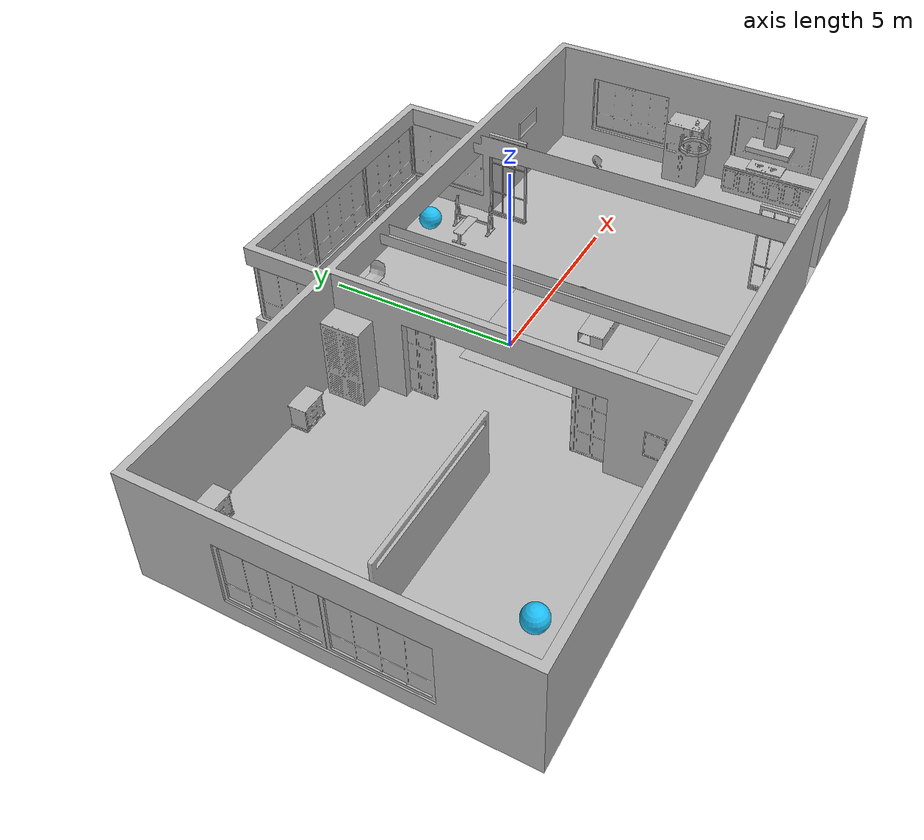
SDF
<sdf version="1.7">
 <world name="default">
  <gravity>0 0 -9.8</gravity>
  <magnetic_field>6e-06 2.3e-05 -4.2e-05</magnetic_field>
  <atmosphere type="adiabatic"/>
  <physics name="default_physics" default="0" type="ode">
   <max_step_size>0.001</max_step_size>
   <real_time_factor>1</real_time_factor>
   <real_time_update_rate>1000</real_time_update_rate>
  </physics>
  <scene>
   <ambient>0.4 0.4 0.4 1</ambient>
   <background>0.7 0.7 0.7 1</background>
   <shadows>0</shadows>
   <grid>0</grid>
   <origin_visual>0</origin_visual>
  </scene>
  <spherical_coordinates>
   <surface_model>EARTH_WGS84</surface_model>
   <latitude_deg>0</latitude_deg>
   <longitude_deg>0</longitude_deg>
   <elevation>0</elevation>
   <heading_deg>0</heading_deg>
  </spherical_coordinates>
  <model name="AirconditionerA_01_001">
   <static>1</static>
   <frame name="aws_robomaker_residential_AirconditionerA_01::__model__" attached_to="aws_robomaker_residential_AirconditionerA_01::link">
    <pose relative_to="__model__">0 0 0 0 -0 0</pose>
   </frame>
   <link name="aws_robomaker_residential_AirconditionerA_01::link">
    <inertial><mass>1</mass></inertial>
    <collision name="collision">
     <geometry>
      <mesh>
       <uri>model://aws_robomaker_residential_AirconditionerA_01/meshes/aws_AirconditionerA_01_collision.DAE</uri>
       <scale>1 1 1</scale>
      </mesh>
     </geometry>
    </collision>
    <visual name="visual">
     <geometry>
      <mesh>
       <uri>model://aws_robomaker_residential_AirconditionerA_01/meshes/aws_AirconditionerA_01_visual.DAE</uri>
      </mesh>
     </geometry>
     <meta><layer>1</layer></meta>
    </visual>
    <pose relative_to="aws_robomaker_residential_AirconditionerA_01::__model__">0 0 0 0 -0 0</pose>
   </link>
   <static>1</static>
   <pose>-9.19941 2.41123 2.08454 0 -0 0</pose>
  </model>
  <model name="AirconditionerB_01_001">
   <static>1</static>
   <frame name="aws_robomaker_residential_AirconditionerB_01::__model__" attached_to="aws_robomaker_residential_AirconditionerB_01::link">
    <pose relative_to="__model__">0 0 0 0 -0 0</pose>
   </frame>
   <link name="aws_robomaker_residential_AirconditionerB_01::link">
    <inertial><mass>1</mass></inertial>
    <collision name="collision">
     <geometry>
      <mesh>
       <uri>model://aws_robomaker_residential_AirconditionerB_01/meshes/aws_AirconditionerB_01_collision.DAE</uri>
       <scale>1 1 1</scale>
      </mesh>
     </geometry>
    </collision>
    <visual name="visual">
     <geometry>
      <mesh>
       <uri>model://aws_robomaker_residential_AirconditionerB_01/meshes/aws_AirconditionerB_01_visual.DAE</uri>
      </mesh>
     </geometry>
     <meta><layer>1</layer></meta>
    </visual>
    <pose relative_to="aws_robomaker_residential_AirconditionerB_01::__model__">0 0 0 0 -0 0</pose>
   </link>
   <pose>-2.00466 -5.22661 0.003485 0 -0 0</pose>
  </model>
  <model name="Ball_01_001">
   <static>1</static>
   <frame name="aws_robomaker_residential_Ball_01::__model__" attached_to="aws_robomaker_residential_Ball_01::link">
    <pose relative_to="__model__">0 0 0 0 -0 0</pose>
   </frame>
   <link name="aws_robomaker_residential_Ball_01::link">
    <inertial>
     <mass>0.12</mass>
     <inertia>
      <ixx>0.030752</ixx>
      <ixy>0</ixy>
      <ixz>0</ixz>
      <iyy>0.030752</iyy>
      <iyz>0</iyz>
      <izz>0.030752</izz>
     </inertia>
    </inertial>
    <collision name="collision">
     <geometry><sphere><radius>0.31</radius></sphere></geometry>
     <surface>
      <friction><ode><mu>0.85</mu><mu2>0.85</mu2></ode></friction>
      <contact><ode><kd>8500</kd><max_vel>5.1</max_vel></ode></contact>
     </surface>
    </collision>
    <visual name="visual">
     <geometry><sphere><radius>0.31</radius></sphere></geometry>
     <material><diffuse>0.12 0.76 0.97 1</diffuse><ambient>0.03 0.21 0.27 1</ambient></material>
     <meta><layer>1</layer></meta>
    </visual>
    <pose relative_to="aws_robomaker_residential_Ball_01::__model__">0 0 0 0 -0 0</pose>
   </link>
   <pose>3.2955 4.22567 0.318684 0 -0 0</pose>
  </model>
  <model name="Ball_01_003">
   <static>1</static>
   <frame name="aws_robomaker_residential_Ball_01::__model__" attached_to="aws_robomaker_residential_Ball_01::link">
    <pose relative_to="__model__">0 0 0 0 -0 0</pose>
   </frame>
   <link name="aws_robomaker_residential_Ball_01::link">
    <inertial>
     <mass>0.12</mass>
     <inertia>
      <ixx>0.030752</ixx>
      <ixy>0</ixy>
      <ixz>0</ixz>
      <iyy>0.030752</iyy>
      <iyz>0</iyz>
      <izz>0.030752</izz>
     </inertia>
    </inertial>
    <collision name="collision">
     <geometry><sphere><radius>0.31</radius></sphere></geometry>
     <surface>
      <friction><ode><mu>0.85</mu><mu2>0.85</mu2></ode></friction>
      <contact><ode><kd>8500</kd><max_vel>5.1</max_vel></ode></contact>
     </surface>
    </collision>
    <visual name="visual">
     <geometry><sphere><radius>0.31</radius></sphere></geometry>
     <material><diffuse>0.12 0.76 0.97 1</diffuse><ambient>0.03 0.21 0.27 1</ambient></material>
     <meta><layer>1</layer></meta>
    </visual>
    <pose relative_to="aws_robomaker_residential_Ball_01::__model__">0 0 0 0 -0 0</pose>
   </link>
   <pose>-6.9455 -4.22174 0.318684 0 -0 0</pose>
  </model>
  <model name="NightStand_01_001">
   <static>1</static>
   <frame name="aws_robomaker_residential_NightStand_01::__model__" attached_to="aws_robomaker_residential_NightStand_01::link">
    <pose relative_to="__model__">0 0 0 0 -0 0</pose>
   </frame>
   <link name="aws_robomaker_residential_NightStand_01::link">
    <inertial>
     <mass>13.6</mass>
     <inertia><ixx>0.6165</ixx><ixy>0</ixy><ixz>0</ixz><iyy>1.29664</iyy><iyz>0</iyz><izz>0.7706</izz></inertia>
    </inertial>
    <collision name="collision">
     <geometry>
      <mesh>
       <uri>model://aws_robomaker_residential_NightStand_01/meshes/aws_NightStand_01_collision.DAE</uri>
       <scale>1 1 1</scale>
      </mesh>
     </geometry>
    </collision>
    <visual name="visual">
     <geometry>
      <mesh><uri>model://aws_robomaker_residential_NightStand_01/meshes/aws_NightStand_01_visual.DAE</uri></mesh>
     </geometry>
     <meta><layer>1</layer></meta>
    </visual>
    <pose relative_to="aws_robomaker_residential_NightStand_01::__model__">0 0 0 0 -0 0</pose>
   </link>
   <static>1</static>
   <pose>-7.72551 2.86042 0.005258 -2e-06 0 0</pose>
  </model>
  <model name="NightStand_01_002">
   <static>1</static>
   <frame name="aws_robomaker_residential_NightStand_01::__model__" attached_to="aws_robomaker_residential_NightStand_01::link">
    <pose relative_to="__model__">0 0 0 0 -0 0</pose>
   </frame>
   <link name="aws_robomaker_residential_NightStand_01::link">
    <inertial>
     <mass>13.6</mass>
     <inertia><ixx>0.6165</ixx><ixy>0</ixy><ixz>0</ixz><iyy>1.29664</iyy><iyz>0</iyz><izz>0.7706</izz></inertia>
    </inertial>
    <collision name="collision">
     <geometry>
      <mesh>
       <uri>model://aws_robomaker_residential_NightStand_01/meshes/aws_NightStand_01_collision.DAE</uri>
       <scale>1 1 1</scale>
      </mesh>
     </geometry>
    </collision>
    <visual name="visual">
     <geometry>
      <mesh><uri>model://aws_robomaker_residential_NightStand_01/meshes/aws_NightStand_01_visual.DAE</uri></mesh>
     </geometry>
     <meta><layer>1</layer></meta>
    </visual>
    <pose relative_to="aws_robomaker_residential_NightStand_01::__model__">0 0 0 0 -0 0</pose>
   </link>
   <static>1</static>
   <pose>-4.40734 2.86042 0.005256 0 2e-06 0</pose>
  </model>
  <model name="Board_01_001">
   <static>1</static>
   <frame name="aws_robomaker_residential_Board_01::__model__" attached_to="aws_robomaker_residential_Board_01::link">
    <pose relative_to="__model__">0 0 0 0 -0 0</pose>
   </frame>
   <link name="aws_robomaker_residential_Board_01::link">
    <inertial><mass>1</mass></inertial>
    <collision name="collision">
     <geometry>
      <mesh>
       <uri>model://aws_robomaker_residential_Board_01/meshes/aws_Board_01_collision.DAE</uri>
       <scale>1 1 1</scale>
      </mesh>
     </geometry>
    </collision>
    <visual name="visual">
     <geometry>
      <mesh><uri>model://aws_robomaker_residential_Board_01/meshes/aws_Board_01_visual.DAE</uri></mesh>
     </geometry>
     <meta><layer>2</layer></meta>
    </visual>
    <pose relative_to="aws_robomaker_residential_Board_01::__model__">0 0 0 0 -0 0</pose>
   </link>
   <static>1</static>
   <pose>2.77907 -5.3927 1.53817 0 -0 0</pose>
  </model>
  <model name="ChairD_01_001">
   <static>1</static>
   <frame name="aws_robomaker_residential_ChairD_01::__model__" attached_to="aws_robomaker_residential_ChairD_01::link">
    <pose relative_to="__model__">0 0 0 0 -0 0</pose>
   </frame>
   <link name="aws_robomaker_residential_ChairD_01::link">
    <inertial>
     <mass>4.5</mass>
     <inertia><ixy>0</ixy><ixz>0</ixz><iyz>0</iyz><ixx>0.217</ixx><iyy>0.217</iyy><izz>0.067</izz></inertia>
    </inertial>
    <collision name="collision">
     <geometry>
      <mesh>
       <uri>model://aws_robomaker_residential_ChairD_01/meshes/aws_ChairD_01_collision.DAE</uri>
       <scale>1 1 1</scale>
      </mesh>
     </geometry>
    </collision>
    <visual name="visual">
     <geometry>
      <mesh><uri>model://aws_robomaker_residential_ChairD_01/meshes/aws_ChairD_01_visual.DAE</uri></mesh>
     </geometry>
     <meta><layer>1</layer></meta>
    </visual>
    <pose relative_to="aws_robomaker_residential_ChairD_01::__model__">0 0 0 0 -0 0</pose>
   </link>
   <pose>-1.38078 4.10446 0 0 -0 0</pose>
  </model>
  <model name="ChairD_01_002">
   <static>1</static>
   <frame name="aws_robomaker_residential_ChairD_01::__model__" attached_to="aws_robomaker_residential_ChairD_01::link">
    <pose relative_to="__model__">0 0 0 0 -0 0</pose>
   </frame>
   <link name="aws_robomaker_residential_ChairD_01::link">
    <inertial>
     <mass>4.5</mass>
     <inertia><ixy>0</ixy><ixz>0</ixz><iyz>0</iyz><ixx>0.217</ixx><iyy>0.217</iyy><izz>0.067</izz></inertia>
    </inertial>
    <collision name="collision">
     <geometry>
      <mesh>
       <uri>model://aws_robomaker_residential_ChairD_01/meshes/aws_ChairD_01_collision.DAE</uri>
       <scale>1 1 1</scale>
      </mesh>
     </geometry>
    </collision>
    <visual name="visual">
     <geometry>
      <mesh><uri>model://aws_robomaker_residential_ChairD_01/meshes/aws_ChairD_01_visual.DAE</uri></mesh>
     </geometry>
     <meta><layer>1</layer></meta>
    </visual>
    <pose relative_to="aws_robomaker_residential_ChairD_01::__model__">0 0 0 0 -0 0</pose>
   </link>
   <pose>0.325214 4.10446 0 0 0 -3.13874</pose>
  </model>
  <model name="ChairD_01_003">
   <static>1</static>
   <frame name="aws_robomaker_residential_ChairD_01::__model__" attached_to="aws_robomaker_residential_ChairD_01::link">
    <pose relative_to="__model__">0 0 0 0 -0 0</pose>
   </frame>
   <link name="aws_robomaker_residential_ChairD_01::link">
    <inertial>
     <mass>4.5</mass>
     <inertia><ixy>0</ixy><ixz>0</ixz><iyz>0</iyz><ixx>0.217</ixx><iyy>0.217</iyy><izz>0.067</izz></inertia>
    </inertial>
    <collision name="collision">
     <geometry>
      <mesh>
       <uri>model://aws_robomaker_residential_ChairD_01/meshes/aws_ChairD_01_collision.DAE</uri>
       <scale>1 1 1</scale>
      </mesh>
     </geometry>
    </collision>
    <visual name="visual">
     <geometry>
      <mesh><uri>model://aws_robomaker_residential_ChairD_01/meshes/aws_ChairD_01_visual.DAE</uri></mesh>
     </geometry>
     <meta><layer>1</layer></meta>
    </visual>
    <pose relative_to="aws_robomaker_residential_ChairD_01::__model__">0 0 0 0 -0 0</pose>
   </link>
   <pose>-8.27078 -4.50446 0 0 -0 0.869673</pose>
  </model>
  <model name="Chandelier_01_001">
   <static>1</static>
   <frame name="aws_robomaker_residential_Chandelier_01::__model__" attached_to="aws_robomaker_residential_Chandelier_01::link">
    <pose relative_to="__model__">0 0 0 0 -0 0</pose>
   </frame>
   <link name="aws_robomaker_residential_Chandelier_01::link">
    <inertial><mass>1</mass></inertial>
    <collision name="collision">
     <geometry>
      <mesh>
       <uri>model://aws_robomaker_residential_Chandelier_01/meshes/aws_Chandelier_01_collision.DAE</uri>
       <scale>1 1 1</scale>
      </mesh>
     </geometry>
    </collision>
    <visual name="visual">
     <geometry>
      <mesh><uri>model://aws_robomaker_residential_Chandelier_01/meshes/aws_Chandelier_01_visual.DAE</uri></mesh>
     </geometry>
     <meta><layer>2</layer></meta>
    </visual>
    <pose relative_to="aws_robomaker_residential_Chandelier_01::__model__">0 0 0 0 -0 0</pose>
   </link>
   <static>1</static>
   <pose>1.22106 4.15574 1.295 0 -0 0</pose>
  </model>
  <model name="Chandelier_01_003">
   <static>1</static>
   <frame name="aws_robomaker_residential_Chandelier_01::__model__" attached_to="aws_robomaker_residential_Chandelier_01::link">
    <pose relative_to="__model__">0 0 0 0 -0 0</pose>
   </frame>
   <link name="aws_robomaker_residential_Chandelier_01::link">
    <inertial><mass>1</mass></inertial>
    <collision name="collision">
     <geometry>
      <mesh>
       <uri>model://aws_robomaker_residential_Chandelier_01/meshes/aws_Chandelier_01_collision.DAE</uri>
       <scale>1 1 1</scale>
      </mesh>
     </geometry>
    </collision>
    <visual name="visual">
     <geometry>
      <mesh><uri>model://aws_robomaker_residential_Chandelier_01/meshes/aws_Chandelier_01_visual.DAE</uri></mesh>
     </geometry>
     <meta><layer>2</layer></meta>
    </visual>
    <pose relative_to="aws_robomaker_residential_Chandelier_01::__model__">0 0 0 0 -0 0</pose>
   </link>
   <static>1</static>
   <pose>7.82406 -1.59 1.751 0 -0 0</pose>
  </model>
  <model name="Carpet_01_001">
   <static>1</static>
   <frame name="aws_robomaker_residential_Carpet_01::__model__" attached_to="aws_robomaker_residential_Carpet_01::link">
    <pose relative_to="__model__">0 0 0 0 -0 0</pose>
   </frame>
   <link name="aws_robomaker_residential_Carpet_01::link">
    <inertial><mass>8.1</mass></inertial>
    <collision name="collision">
     <geometry>
      <mesh>
       <uri>model://aws_robomaker_residential_Carpet_01/meshes/aws_Carpet_01_collision.DAE</uri>
       <scale>1 1 0.95</scale>
      </mesh>
     </geometry>
     <surface><friction><ode><mu>100</mu><mu2>50</mu2></ode></friction></surface>
     <pose>0 0 -0.01 0 -0 0</pose>
    </collision>
    <visual name="visual">
     <geometry>
      <mesh><uri>model://aws_robomaker_residential_Carpet_01/meshes/aws_Carpet_01_visual.DAE</uri></mesh>
     </geometry>
     <meta><layer>1</layer></meta>
    </visual>
    <pose relative_to="aws_robomaker_residential_Carpet_01::__model__">0 0 0 0 -0 0</pose>
   </link>
   <static>1</static>
   <pose>0.78505 -1.10665 0.001106 0 -0 0</pose>
  </model>
  <model name="SecurityCamera_01_001">
   <static>1</static>
   <frame name="aws_robomaker_residential_SecurityCamera_01::__model__" attached_to="aws_robomaker_residential_SecurityCamera_01::link">
    <pose relative_to="__model__">0 0 0 0 -0 0</pose>
   </frame>
   <link name="aws_robomaker_residential_SecurityCamera_01::link">
    <inertial>
     <mass>1</mass>
     <inertia>
      <ixx>18.2222</ixx>
      <ixy>0</ixy>
      <ixz>0</ixz>
      <iyy>18.2222</iyy>
      <iyz>0</iyz>
      <izz>0.0018767</izz>
     </inertia>
    </inertial>
    <collision name="collision">
     <geometry>
      <mesh>
       <uri>model://aws_robomaker_residential_SecurityCamera_01/meshes/aws_SecurityCamera_01_collision.DAE</uri>
       <scale>1 1 1</scale>
      </mesh>
     </geometry>
    </collision>
    <visual name="visual">
     <geometry>
      <mesh>
       <uri>model://aws_robomaker_residential_SecurityCamera_01/meshes/aws_SecurityCamera_01_visual.DAE</uri>
      </mesh>
     </geometry>
     <meta><layer>2</layer></meta>
    </visual>
    <pose relative_to="aws_robomaker_residential_SecurityCamera_01::__model__">0 0 0 0 -0 0</pose>
   </link>
   <pose>0.842134 -4.99629 0.495067 0 0 -2.84104</pose>
  </model>
  <model name="CoffeeTable_01_001">
   <static>1</static>
   <frame name="aws_robomaker_residential_CoffeeTable_01::__model__" attached_to="aws_robomaker_residential_CoffeeTable_01::link">
    <pose relative_to="__model__">0 0 0 0 -0 0</pose>
   </frame>
   <link name="aws_robomaker_residential_CoffeeTable_01::link">
    <inertial>
     <mass>21.7</mass>
     <inertia><ixx>0.81375</ixx><ixy>0</ixy><ixz>0</ixz><iyy>2.76675</iyy><iyz>0</iyz><izz>3.254</izz></inertia>
    </inertial>
    <collision name="collision">
     <geometry>
      <mesh>
       <uri>model://aws_robomaker_residential_CoffeeTable_01/meshes/aws_CoffeeTable_01_collision.DAE</uri>
       <scale>1 1 1</scale>
      </mesh>
     </geometry>
     <surface><contact><ode><max_vel>0.01</max_vel></ode></contact></surface>
    </collision>
    <visual name="visual">
     <geometry>
      <mesh><uri>model://aws_robomaker_residential_CoffeeTable_01/meshes/aws_CoffeeTable_01_visual.DAE</uri></mesh>
     </geometry>
     <meta><layer>1</layer></meta>
    </visual>
    <pose relative_to="aws_robomaker_residential_CoffeeTable_01::__model__">0 0 0 0 -0 0</pose>
   </link>
   <static>1</static>
   <pose>1.5123 -1.73344 0.041983 0 -0 0.01</pose>
  </model>
  <model name="CookingBench_01_001">
   <frame name="aws_robomaker_residential_CookingBench_01::__model__" attached_to="aws_robomaker_residential_CookingBench_01::link">
    <pose relative_to="__model__">0 0 0 0 -0 0</pose>
   </frame>
   <link name="aws_robomaker_residential_CookingBench_01::link">
    <inertial><mass>1</mass></inertial>
    <collision name="collision">
     <geometry>
      <mesh>
       <uri>model://aws_robomaker_residential_CookingBench_01/meshes/aws_CookingBench_01_collision.DAE</uri>
       <scale>1 1 1</scale>
      </mesh>
     </geometry>
    </collision>
    <visual name="visual">
     <geometry>
      <mesh>
       <uri>model://aws_robomaker_residential_CookingBench_01/meshes/aws_CookingBench_01_visual.DAE</uri>
      </mesh>
     </geometry>
     <meta><layer>1</layer></meta>
    </visual>
    <pose relative_to="aws_robomaker_residential_CookingBench_01::__model__">0 0 0 0 -0 0</pose>
   </link>
   <pose>9.03838 -3.35114 0.90361 0 -0 3.13713</pose>
   <static>1</static>
  </model>
  <model name="FitnessEquipment_01_001">
   <static>1</static>
   <frame name="aws_robomaker_residential_FitnessEquipment_01::__model__" attached_to="aws_robomaker_residential_FitnessEquipment_01::link">
    <pose relative_to="__model__">0 0 0 0 -0 0</pose>
   </frame>
   <link name="aws_robomaker_residential_FitnessEquipment_01::link">
    <inertial><mass>80</mass></inertial>
    <collision name="collision">
     <geometry>
      <mesh>
       <uri>model://aws_robomaker_residential_FitnessEquipment_01/meshes/aws_FitnessEquipment_01_collision.DAE</uri>
       <scale>1 1 1</scale>
      </mesh>
     </geometry>
    </collision>
    <visual name="visual">
     <geometry>
      <mesh>
       <uri>model://aws_robomaker_residential_FitnessEquipment_01/meshes/aws_FitnessEquipment_01_visual.DAE</uri>
      </mesh>
     </geometry>
     <meta><layer>1</layer></meta>
    </visual>
    <pose relative_to="aws_robomaker_residential_FitnessEquipment_01::__model__">0 0 0 0 -0 0</pose>
   </link>
   <static>1</static>
   <pose>3.48472 3.1691 0.003168 0 -0 0</pose>
  </model>
  <model name="FoldingDoor_01_001">
   <static>1</static>
   <frame name="aws_robomaker_residential_FoldingDoor_01::__model__" attached_to="aws_robomaker_residential_FoldingDoor_01::link">
    <pose relative_to="__model__">0 0 0 0 -0 0</pose>
   </frame>
   <link name="aws_robomaker_residential_FoldingDoor_01::link">
    <inertial><mass>1</mass></inertial>
    <collision name="collision">
     <geometry>
      <mesh>
       <uri>model://aws_robomaker_residential_FoldingDoor_01/meshes/aws_FoldingDoor_01_collision.DAE</uri>
       <scale>1 1 1</scale>
      </mesh>
     </geometry>
    </collision>
    <visual name="visual">
     <geometry>
      <mesh><uri>model://aws_robomaker_residential_FoldingDoor_01/meshes/aws_FoldingDoor_01_visual.DAE</uri></mesh>
     </geometry>
     <meta><layer>2</layer></meta>
    </visual>
    <pose relative_to="aws_robomaker_residential_FoldingDoor_01::__model__">0 0 0 0 -0 0</pose>
   </link>
   <static>1</static>
   <pose>-2.4611 1.84422 0.041881 0 -0 0</pose>
  </model>
  <model name="FoldingDoor_01_002">
   <static>1</static>
   <frame name="aws_robomaker_residential_FoldingDoor_01::__model__" attached_to="aws_robomaker_residential_FoldingDoor_01::link">
    <pose relative_to="__model__">0 0 0 0 -0 0</pose>
   </frame>
   <link name="aws_robomaker_residential_FoldingDoor_01::link">
    <inertial><mass>1</mass></inertial>
    <collision name="collision">
     <geometry>
      <mesh>
       <uri>model://aws_robomaker_residential_FoldingDoor_01/meshes/aws_FoldingDoor_01_collision.DAE</uri>
       <scale>1 1 1</scale>
      </mesh>
     </geometry>
    </collision>
    <visual name="visual">
     <geometry>
      <mesh><uri>model://aws_robomaker_residential_FoldingDoor_01/meshes/aws_FoldingDoor_01_visual.DAE</uri></mesh>
     </geometry>
     <meta><layer>2</layer></meta>
    </visual>
    <pose relative_to="aws_robomaker_residential_FoldingDoor_01::__model__">0 0 0 0 -0 0</pose>
   </link>
   <static>1</static>
   <pose>-2.4611 -4.05332 0.041881 0 -0 0</pose>
  </model>
  <model name="HouseWallB_01_001">
   <static>1</static>
   <frame name="aws_robomaker_residential_HouseWallB_01::__model__" attached_to="aws_robomaker_residential_HouseWallB_01::link">
    <pose relative_to="__model__">0 0 0 0 -0 0</pose>
   </frame>
   <link name="aws_robomaker_residential_HouseWallB_01::link">
    <inertial><mass>1</mass></inertial>
    <collision name="collision">
     <geometry>
      <mesh>
       <uri>model://aws_robomaker_residential_HouseWallB_01/meshes/aws_HouseWallB_01_collision.DAE</uri>
       <scale>1 1 1</scale>
      </mesh>
     </geometry>
    </collision>
    <visual name="visual">
     <geometry>
      <mesh><uri>model://aws_robomaker_residential_HouseWallB_01/meshes/aws_HouseWallB_01_visual.DAE</uri></mesh>
     </geometry>
     <meta><layer>2</layer></meta>
    </visual>
    <pose relative_to="aws_robomaker_residential_HouseWallB_01::__model__">0 0 0 0 -0 0</pose>
   </link>
   <static>1</static>
  </model>
  <model name="FloorB_01_001">
   <static>1</static>
   <frame name="aws_robomaker_residential_FloorB_01::__model__" attached_to="aws_robomaker_residential_FloorB_01::link">
    <pose relative_to="__model__">0 0 0 0 -0 0</pose>
   </frame>
   <link name="aws_robomaker_residential_FloorB_01::link">
    <inertial><mass>100</mass></inertial>
    <collision name="collision">
     <geometry>
      <mesh>
       <uri>model://aws_robomaker_residential_FloorB_01/meshes/aws_FloorB_01_collision.DAE</uri>
       <scale>1 1 0.9</scale>
      </mesh>
     </geometry>
     <surface><friction><ode><mu>100</mu><mu2>50</mu2></ode></friction></surface>
    </collision>
    <visual name="visual">
     <geometry>
      <mesh><uri>model://aws_robomaker_residential_FloorB_01/meshes/aws_FloorB_01_visual.DAE</uri></mesh>
     </geometry>
     <meta><layer>1</layer></meta>
    </visual>
    <pose relative_to="aws_robomaker_residential_FloorB_01::__model__">0 0 0 0 -0 0</pose>
   </link>
   <static>1</static>
  </model>
  <model name="FoldingDoor_02_001">
   <static>1</static>
   <frame name="aws_robomaker_residential_FoldingDoor_02::__model__" attached_to="aws_robomaker_residential_FoldingDoor_02::link">
    <pose relative_to="__model__">0 0 0 0 -0 0</pose>
   </frame>
   <link name="aws_robomaker_residential_FoldingDoor_02::link">
    <inertial><mass>1</mass></inertial>
    <collision name="collision">
     <geometry>
      <mesh>
       <uri>model://aws_robomaker_residential_FoldingDoor_02/meshes/aws_FoldingDoor_02_collision.DAE</uri>
       <scale>1 1 1</scale>
      </mesh>
     </geometry>
    </collision>
    <visual name="visual">
     <geometry>
      <mesh><uri>model://aws_robomaker_residential_FoldingDoor_02/meshes/aws_FoldingDoor_02_visual.DAE</uri></mesh>
     </geometry>
     <meta><layer>2</layer></meta>
    </visual>
    <pose relative_to="aws_robomaker_residential_FoldingDoor_02::__model__">0 0 0 0 -0 0</pose>
   </link>
   <static>1</static>
   <pose>4.67423 2.46451 0 0 -0 3.14159</pose>
  </model>
  <model name="FoldingDoor_02_002">
   <static>1</static>
   <frame name="aws_robomaker_residential_FoldingDoor_02::__model__" attached_to="aws_robomaker_residential_FoldingDoor_02::link">
    <pose relative_to="__model__">0 0 0 0 -0 0</pose>
   </frame>
   <link name="aws_robomaker_residential_FoldingDoor_02::link">
    <inertial><mass>1</mass></inertial>
    <collision name="collision">
     <geometry>
      <mesh>
       <uri>model://aws_robomaker_residential_FoldingDoor_02/meshes/aws_FoldingDoor_02_collision.DAE</uri>
       <scale>1 1 1</scale>
      </mesh>
     </geometry>
    </collision>
    <visual name="visual">
     <geometry>
      <mesh><uri>model://aws_robomaker_residential_FoldingDoor_02/meshes/aws_FoldingDoor_02_visual.DAE</uri></mesh>
     </geometry>
     <meta><layer>2</layer></meta>
    </visual>
    <pose relative_to="aws_robomaker_residential_FoldingDoor_02::__model__">0 0 0 0 -0 0</pose>
   </link>
   <static>1</static>
   <pose>4.8912 -4.84968 0 0 -0 0</pose>
  </model>
  <model name="KitchenCabinet_01_001">
   <static>1</static>
   <frame name="aws_robomaker_residential_KitchenCabinet_01::__model__" attached_to="aws_robomaker_residential_KitchenCabinet_01::link">
    <pose relative_to="__model__">0 0 0 0 -0 0</pose>
   </frame>
   <link name="aws_robomaker_residential_KitchenCabinet_01::link">
    <inertial><mass>1</mass></inertial>
    <collision name="collision">
     <geometry>
      <mesh>
       <uri>model://aws_robomaker_residential_KitchenCabinet_01/meshes/aws_KitchenCabinet_01_collision.DAE</uri>
       <scale>1 1 1</scale>
      </mesh>
     </geometry>
    </collision>
    <visual name="visual">
     <geometry>
      <mesh>
       <uri>model://aws_robomaker_residential_KitchenCabinet_01/meshes/aws_KitchenCabinet_01_visual.DAE</uri>
      </mesh>
     </geometry>
     <meta><layer>1</layer></meta>
    </visual>
    <pose relative_to="aws_robomaker_residential_KitchenCabinet_01::__model__">0 0 0 0 -0 0</pose>
   </link>
   <static>1</static>
   <pose>8.00201 -3.83651 0.012068 0 0 -3.14</pose>
  </model>
  <model name="LightC_01_001">
   <static>1</static>
   <frame name="aws_robomaker_residential_LightC_01::__model__" attached_to="aws_robomaker_residential_LightC_01::link">
    <pose relative_to="__model__">0 0 0 0 -0 0</pose>
   </frame>
   <link name="aws_robomaker_residential_LightC_01::link">
    <inertial><mass>1</mass></inertial>
    <collision name="collision">
     <geometry>
      <mesh>
       <uri>model://aws_robomaker_residential_LightC_01/meshes/aws_LightC_01_collision.DAE</uri>
       <scale>1 1 1</scale>
      </mesh>
     </geometry>
    </collision>
    <visual name="visual">
     <geometry>
      <mesh><uri>model://aws_robomaker_residential_LightC_01/meshes/aws_LightC_01_visual.DAE</uri></mesh>
     </geometry>
     <meta><layer>2</layer></meta>
    </visual>
    <pose relative_to="aws_robomaker_residential_LightC_01::__model__">0 0 0 0 -0 0</pose>
   </link>
   <static>1</static>
   <pose>1.76957 -5.44437 2 0 -0 0</pose>
  </model>
  <model name="LightC_01_002">
   <static>1</static>
   <frame name="aws_robomaker_residential_LightC_01::__model__" attached_to="aws_robomaker_residential_LightC_01::link">
    <pose relative_to="__model__">0 0 0 0 -0 0</pose>
   </frame>
   <link name="aws_robomaker_residential_LightC_01::link">
    <inertial><mass>1</mass></inertial>
    <collision name="collision">
     <geometry>
      <mesh>
       <uri>model://aws_robomaker_residential_LightC_01/meshes/aws_LightC_01_collision.DAE</uri>
       <scale>1 1 1</scale>
      </mesh>
     </geometry>
    </collision>
    <visual name="visual">
     <geometry>
      <mesh><uri>model://aws_robomaker_residential_LightC_01/meshes/aws_LightC_01_visual.DAE</uri></mesh>
     </geometry>
     <meta><layer>2</layer></meta>
    </visual>
    <pose relative_to="aws_robomaker_residential_LightC_01::__model__">0 0 0 0 -0 0</pose>
   </link>
   <static>1</static>
   <pose>-0.138245 -5.44437 2 0 -0 0</pose>
  </model>
  <model name="PortraitA_01">
   <static>1</static>
   <frame name="aws_robomaker_residential_PortraitA_01::__model__" attached_to="aws_robomaker_residential_PortraitA_01::link">
    <pose relative_to="__model__">0 0 0 0 -0 0</pose>
   </frame>
   <link name="aws_robomaker_residential_PortraitA_01::link">
    <inertial><mass>1</mass></inertial>
    <collision name="collision">
     <geometry>
      <mesh>
       <uri>model://aws_robomaker_residential_PortraitA_01/meshes/aws_PortraitA_01_collision.DAE</uri>
       <scale>1 1 1</scale>
      </mesh>
     </geometry>
    </collision>
    <visual name="visual">
     <geometry>
      <mesh><uri>model://aws_robomaker_residential_PortraitA_01/meshes/aws_PortraitA_01_visual.DAE</uri></mesh>
     </geometry>
     <meta><layer>2</layer></meta>
    </visual>
    <pose relative_to="aws_robomaker_residential_PortraitA_01::__model__">0 0 0 0 -0 0</pose>
   </link>
   <static>1</static>
   <pose>-2.71236 -4.81754 1 0 -0 1.5668</pose>
  </model>
  <model name="PortraitD_01">
   <static>1</static>
   <frame name="aws_robomaker_residential_PortraitD_01::__model__" attached_to="aws_robomaker_residential_PortraitD_01::link">
    <pose relative_to="__model__">0 0 0 0 -0 0</pose>
   </frame>
   <link name="aws_robomaker_residential_PortraitD_01::link">
    <inertial><mass>1.5</mass></inertial>
    <collision name="collision">
     <geometry>
      <mesh>
       <uri>model://aws_robomaker_residential_PortraitD_01/meshes/aws_PortraitD_01_collision.DAE</uri>
       <scale>1 1 1</scale>
      </mesh>
     </geometry>
    </collision>
    <visual name="visual">
     <geometry>
      <mesh><uri>model://aws_robomaker_residential_PortraitD_01/meshes/aws_PortraitD_01_visual.DAE</uri></mesh>
     </geometry>
     <meta><layer>2</layer></meta>
    </visual>
    <pose relative_to="aws_robomaker_residential_PortraitD_01::__model__">0 0 0 0 -0 0</pose>
   </link>
   <static>1</static>
   <pose>0.789763 -5.47872 1.8 0 -0 3.13853</pose>
  </model>
  <model name="PortraitD_02">
   <static>1</static>
   <frame name="aws_robomaker_residential_PortraitD_02::__model__" attached_to="aws_robomaker_residential_PortraitD_02::link">
    <pose relative_to="__model__">0 0 0 0 -0 0</pose>
   </frame>
   <link name="aws_robomaker_residential_PortraitD_02::link">
    <inertial><mass>1.5</mass></inertial>
    <collision name="collision">
     <geometry>
      <mesh>
       <uri>model://aws_robomaker_residential_PortraitD_02/meshes/aws_PortraitD_01_collision.DAE</uri>
       <scale>1 1 1</scale>
      </mesh>
     </geometry>
    </collision>
    <visual name="visual">
     <geometry>
      <mesh><uri>model://aws_robomaker_residential_PortraitD_02/meshes/aws_PortraitD_01_visual.DAE</uri></mesh>
     </geometry>
     <meta><layer>2</layer></meta>
    </visual>
    <pose relative_to="aws_robomaker_residential_PortraitD_02::__model__">0 0 0 0 -0 0</pose>
   </link>
   <static>1</static>
   <pose>6.87018 3.08031 1.48844 0 -0 0</pose>
  </model>
  <model name="DeskPortraitD_01">
   <static>1</static>
   <frame name="aws_robomaker_residential_DeskPortraitD_01::__model__" attached_to="aws_robomaker_residential_DeskPortraitD_01::link">
    <pose relative_to="__model__">0 0 0 0 -0 0</pose>
   </frame>
   <link name="aws_robomaker_residential_DeskPortraitD_01::link">
    <inertial>
     <mass>0.4</mass>
     <inertia><ixx>0.0616</ixx><ixy>0</ixy><ixz>0</ixz><iyy>0.1313</iyy><iyz>0</iyz><izz>0.0803</izz></inertia>
    </inertial>
    <collision name="collision">
     <geometry>
      <mesh>
       <uri>model://aws_robomaker_residential_DeskPortraitD_01/meshes/aws_DeskPortraitD_01_collision.DAE</uri>
       <scale>1 1 1</scale>
      </mesh>
     </geometry>
     <surface>
      <friction><ode><mu>0.7</mu><mu2>0.7</mu2></ode></friction>
      <contact><ode><kd>28500</kd></ode></contact>
     </surface>
    </collision>
    <visual name="visual">
     <geometry>
      <mesh>
       <uri>model://aws_robomaker_residential_DeskPortraitD_01/meshes/aws_DeskPortraitD_01_visual.DAE</uri>
      </mesh>
     </geometry>
     <meta><layer>1</layer></meta>
    </visual>
    <pose relative_to="aws_robomaker_residential_DeskPortraitD_01::__model__">0 0 0 0 -0 0</pose>
   </link>
   <pose>2.64556 -5.37622 1.57374 0 0 -3.11283</pose>
  </model>
  <model name="DeskPortraitD_03">
   <static>1</static>
   <frame name="aws_robomaker_residential_DeskPortraitD_03::__model__" attached_to="aws_robomaker_residential_DeskPortraitD_03::link">
    <pose relative_to="__model__">0 0 0 0 -0 0</pose>
   </frame>
   <link name="aws_robomaker_residential_DeskPortraitD_03::link">
    <inertial>
     <mass>0.4</mass>
     <inertia><ixx>0.0616</ixx><ixy>0</ixy><ixz>0</ixz><iyy>0.1313</iyy><iyz>0</iyz><izz>0.0803</izz></inertia>
    </inertial>
    <collision name="collision">
     <geometry>
      <mesh>
       <uri>model://aws_robomaker_residential_DeskPortraitD_03/meshes/aws_DeskPortraitD_01_collision.DAE</uri>
       <scale>1 1 1</scale>
      </mesh>
     </geometry>
     <surface>
      <friction><ode><mu>0.7</mu><mu2>0.7</mu2></ode></friction>
      <contact><ode><kd>28500</kd></ode></contact>
     </surface>
    </collision>
    <visual name="visual">
     <geometry>
      <mesh>
       <uri>model://aws_robomaker_residential_DeskPortraitD_03/meshes/aws_DeskPortraitD_01_visual.DAE</uri>
      </mesh>
     </geometry>
     <meta><layer>1</layer></meta>
    </visual>
    <pose relative_to="aws_robomaker_residential_DeskPortraitD_03::__model__">0 0 0 0 -0 0</pose>
   </link>
   <pose>1.82673 -1.46488 0.126208 1e-05 6e-06 -3.11438</pose>
  </model>
  <model name="Rangehood_01_001">
   <static>1</static>
   <frame name="aws_robomaker_residential_Rangehood_01::__model__" attached_to="aws_robomaker_residential_Rangehood_01::link">
    <pose relative_to="__model__">0 0 0 0 -0 0</pose>
   </frame>
   <link name="aws_robomaker_residential_Rangehood_01::link">
    <inertial><mass>1</mass></inertial>
    <collision name="collision">
     <geometry>
      <mesh>
       <uri>model://aws_robomaker_residential_Rangehood_01/meshes/aws_Rangehood_01_collision.DAE</uri>
       <scale>1 1 1</scale>
      </mesh>
     </geometry>
    </collision>
    <visual name="visual">
     <geometry>
      <mesh><uri>model://aws_robomaker_residential_Rangehood_01/meshes/aws_Rangehood_01_visual.DAE</uri></mesh>
     </geometry>
     <meta><layer>2</layer></meta>
    </visual>
    <pose relative_to="aws_robomaker_residential_Rangehood_01::__model__">0 0 0 0 -0 0</pose>
   </link>
   <static>1</static>
   <pose>9.01979 -3.36994 1.50761 0 -0 0</pose>
  </model>
  <model name="Refrigerator_01_001">
   <static>1</static>
   <frame name="aws_robomaker_residential_Refrigerator_01::__model__" attached_to="aws_robomaker_residential_Refrigerator_01::link">
    <pose relative_to="__model__">0 0 0 0 -0 0</pose>
   </frame>
   <link name="aws_robomaker_residential_Refrigerator_01::link">
    <inertial><mass>1</mass></inertial>
    <collision name="collision">
     <geometry>
      <mesh>
       <uri>model://aws_robomaker_residential_Refrigerator_01/meshes/aws_Refrigerator_01_collision.DAE</uri>
       <scale>1 1 1</scale>
      </mesh>
     </geometry>
    </collision>
    <visual name="visual">
     <geometry>
      <mesh>
       <uri>model://aws_robomaker_residential_Refrigerator_01/meshes/aws_Refrigerator_01_visual.DAE</uri>
      </mesh>
     </geometry>
     <meta><layer>1</layer></meta>
    </visual>
    <pose relative_to="aws_robomaker_residential_Refrigerator_01::__model__">0 0 0 0 -0 0</pose>
   </link>
   <static>1</static>
   <pose>8.70273 -1.03203 0 0 0 -1.5635</pose>
  </model>
  <model name="ShoeRack_01_001">
   <static>1</static>
   <frame name="aws_robomaker_residential_ShoeRack_01::__model__" attached_to="aws_robomaker_residential_ShoeRack_01::link">
    <pose relative_to="__model__">0 0 0 0 -0 0</pose>
   </frame>
   <link name="aws_robomaker_residential_ShoeRack_01::link">
    <inertial>
     <mass>6</mass>
     <inertia>
      <ixx>0.02</ixx>
      <ixy>0</ixy>
      <ixz>0</ixz>
      <iyy>0.04</iyy>
      <iyz>0</iyz>
      <ixx>0.02</ixx>
      <izz>1</izz>
     </inertia>
    </inertial>
    <collision name="collision">
     <geometry>
      <mesh>
       <uri>model://aws_robomaker_residential_ShoeRack_01/meshes/aws_ShoeRack_01_collision.DAE</uri>
       <scale>1 1 1</scale>
      </mesh>
     </geometry>
     <surface>
      <friction><ode><mu>0.2</mu><mu2>0.2</mu2></ode></friction>
      <contact><ode><kd>2500</kd></ode></contact>
     </surface>
    </collision>
    <visual name="visual">
     <geometry>
      <mesh><uri>model://aws_robomaker_residential_ShoeRack_01/meshes/aws_ShoeRack_01_visual.DAE</uri></mesh>
     </geometry>
     <meta><layer>1</layer></meta>
    </visual>
    <pose relative_to="aws_robomaker_residential_ShoeRack_01::__model__">0 0 0 0 -0 0</pose>
   </link>
   <pose>4.29798 -5.17357 0 0 -0 0</pose>
  </model>
  <model name="Tableware_01_001">
   <static>1</static>
   <frame name="aws_robomaker_residential_Tableware_01::__model__" attached_to="aws_robomaker_residential_Tableware_01::link">
    <pose relative_to="__model__">0 0 0 0 -0 0</pose>
   </frame>
   <link name="aws_robomaker_residential_Tableware_01::link">
    <inertial><mass>1</mass></inertial>
    <collision name="collision">
     <geometry>
      <mesh>
       <uri>model://aws_robomaker_residential_Tableware_01/meshes/aws_Tableware_01_collision.DAE</uri>
       <scale>1 1 1</scale>
      </mesh>
     </geometry>
    </collision>
    <visual name="visual">
     <geometry>
      <mesh><uri>model://aws_robomaker_residential_Tableware_01/meshes/aws_Tableware_01_visual.DAE</uri></mesh>
     </geometry>
     <meta><layer>1</layer></meta>
    </visual>
    <pose relative_to="aws_robomaker_residential_Tableware_01::__model__">0 0 0 0 -0 0</pose>
   </link>
   <pose>7.15317 0.982767 0.817812 -0.001238 -0.000976 1.02476</pose>
  </model>
  <model name="Trash_01_001">
   <static>1</static>
   <frame name="aws_robomaker_residential_Trash_01::__model__" attached_to="aws_robomaker_residential_Trash_01::link">
    <pose relative_to="__model__">0 0 0 0 -0 0</pose>
   </frame>
   <link name="aws_robomaker_residential_Trash_01::link">
    <inertial>
     <mass>0.1</mass>
     <inertia><ixy>0</ixy><ixz>0</ixz><iyz>0</iyz><ixx>0.05288</ixx><iyy>0.05288</iyy><izz>0.09132</izz></inertia>
    </inertial>
    <collision name="collision">
     <geometry>
      <mesh>
       <uri>model://aws_robomaker_residential_Trash_01/meshes/aws_Trash_01_collision.DAE</uri>
       <scale>1 1 1</scale>
      </mesh>
     </geometry>
    </collision>
    <visual name="visual">
     <geometry>
      <mesh><uri>model://aws_robomaker_residential_Trash_01/meshes/aws_Trash_01_visual.DAE</uri></mesh>
     </geometry>
     <meta><layer>1</layer></meta>
    </visual>
    <pose relative_to="aws_robomaker_residential_Trash_01::__model__">0 0 0 0 -0 0</pose>
   </link>
   <pose>2.36015 -0.796238 0.011 0 -0 0</pose>
  </model>
  <model name="Trash_01_002">
   <static>1</static>
   <frame name="aws_robomaker_residential_Trash_01::__model__" attached_to="aws_robomaker_residential_Trash_01::link">
    <pose relative_to="__model__">0 0 0 0 -0 0</pose>
   </frame>
   <link name="aws_robomaker_residential_Trash_01::link">
    <inertial>
     <mass>0.1</mass>
     <inertia><ixy>0</ixy><ixz>0</ixz><iyz>0</iyz><ixx>0.05288</ixx><iyy>0.05288</iyy><izz>0.09132</izz></inertia>
    </inertial>
    <collision name="collision">
     <geometry>
      <mesh>
       <uri>model://aws_robomaker_residential_Trash_01/meshes/aws_Trash_01_collision.DAE</uri>
       <scale>1 1 1</scale>
      </mesh>
     </geometry>
    </collision>
    <visual name="visual">
     <geometry>
      <mesh><uri>model://aws_robomaker_residential_Trash_01/meshes/aws_Trash_01_visual.DAE</uri></mesh>
     </geometry>
     <meta><layer>1</layer></meta>
    </visual>
    <pose relative_to="aws_robomaker_residential_Trash_01::__model__">0 0 0 0 -0 0</pose>
   </link>
   <pose>-8.70415 1.00058 0.011 0 -0 0</pose>
  </model>
  <model name="TVCabinet_01_001">
   <static>1</static>
   <frame name="aws_robomaker_residential_TVCabinet_01::__model__" attached_to="aws_robomaker_residential_TVCabinet_01::link">
    <pose relative_to="__model__">0 0 0 0 -0 0</pose>
   </frame>
   <link name="aws_robomaker_residential_TVCabinet_01::link">
    <inertial>
     <mass>59.2</mass>
     <inertia><ixx>30.4</ixx><ixy>0</ixy><ixz>0</ixz><iyy>2.56</iyy><iyz>0</iyz><izz>31.38</izz></inertia>
    </inertial>
    <collision name="collision">
     <geometry>
      <mesh>
       <uri>model://aws_robomaker_residential_TVCabinet_01/meshes/aws_TVCabinet_01_collision.DAE</uri>
       <scale>1 1 1</scale>
      </mesh>
     </geometry>
    </collision>
    <visual name="visual">
     <geometry>
      <mesh><uri>model://aws_robomaker_residential_TVCabinet_01/meshes/aws_TVCabinet_01_visual.DAE</uri></mesh>
     </geometry>
     <meta><layer>1</layer></meta>
    </visual>
    <pose relative_to="aws_robomaker_residential_TVCabinet_01::__model__">0 0 0 0 -0 0</pose>
   </link>
   <static>1</static>
   <pose>0.629509 -5.18358 -0.017049 0 -0 1.5792</pose>
  </model>
  <model name="RoomWall_01_001">
   <static>1</static>
   <frame name="aws_robomaker_residential_RoomWall_01::__model__" attached_to="aws_robomaker_residential_RoomWall_01::link">
    <pose relative_to="__model__">0 0 0 0 -0 0</pose>
   </frame>
   <link name="aws_robomaker_residential_RoomWall_01::link">
    <inertial><mass>100</mass></inertial>
    <collision name="collision">
     <geometry>
      <mesh>
       <uri>model://aws_robomaker_residential_RoomWall_01/meshes/aws_RoomWall_01_collision.DAE</uri>
       <scale>1 1 1</scale>
      </mesh>
     </geometry>
    </collision>
    <visual name="visual">
     <geometry>
      <mesh><uri>model://aws_robomaker_residential_RoomWall_01/meshes/aws_RoomWall_01_visual.DAE</uri></mesh>
     </geometry>
     <meta><layer>2</layer></meta>
    </visual>
    <pose relative_to="aws_robomaker_residential_RoomWall_01::__model__">0 0 0 0 -0 0</pose>
   </link>
   <static>1</static>
   <pose>-6.09755 -1.49618 0.028124 0 -0 0</pose>
  </model>
  <model name="Wardrobe_01_001">
   <static>1</static>
   <frame name="aws_robomaker_residential_Wardrobe_01::__model__" attached_to="aws_robomaker_residential_Wardrobe_01::link">
    <pose relative_to="__model__">0 0 0 0 -0 0</pose>
   </frame>
   <link name="aws_robomaker_residential_Wardrobe_01::link">
    <inertial><mass>51.7</mass></inertial>
    <collision name="collision">
     <geometry>
      <mesh>
       <uri>model://aws_robomaker_residential_Wardrobe_01/meshes/aws_Wardrobe_01_collision.DAE</uri>
       <scale>1 1 1</scale>
      </mesh>
     </geometry>
    </collision>
    <visual name="visual">
     <geometry>
      <mesh><uri>model://aws_robomaker_residential_Wardrobe_01/meshes/aws_Wardrobe_01_visual.DAE</uri></mesh>
     </geometry>
     <meta><layer>1</layer></meta>
    </visual>
    <pose relative_to="aws_robomaker_residential_Wardrobe_01::__model__">0 0 0 0 -0 0</pose>
   </link>
   <static>1</static>
   <pose>-3.14671 2.4762 0.000704 0 0 -1.56967</pose>
  </model>
  <model name="RoomWindow_01_001">
   <static>1</static>
   <frame name="aws_robomaker_residential_RoomWindow_01::__model__" attached_to="aws_robomaker_residential_RoomWindow_01::link">
    <pose relative_to="__model__">0 0 0 0 -0 0</pose>
   </frame>
   <link name="aws_robomaker_residential_RoomWindow_01::link">
    <inertial><mass>1</mass></inertial>
    <collision name="collision">
     <geometry>
      <mesh>
       <uri>model://aws_robomaker_residential_RoomWindow_01/meshes/aws_RoomWindow_01_collision.DAE</uri>
       <scale>1 1 1</scale>
      </mesh>
     </geometry>
    </collision>
    <visual name="visual">
     <geometry>
      <mesh><uri>model://aws_robomaker_residential_RoomWindow_01/meshes/aws_RoomWindow_01_visual.DAE</uri></mesh>
     </geometry>
     <meta><layer>2</layer></meta>
    </visual>
    <pose relative_to="aws_robomaker_residential_RoomWindow_01::__model__">0 0 0 0 -0 0</pose>
   </link>
   <static>1</static>
   <pose>-9.4186 -0.026285 0.502739 0 -0 0</pose>
  </model>
  <model name="RoomWindow_01_002">
   <static>1</static>
   <frame name="aws_robomaker_residential_RoomWindow_01::__model__" attached_to="aws_robomaker_residential_RoomWindow_01::link">
    <pose relative_to="__model__">0 0 0 0 -0 0</pose>
   </frame>
   <link name="aws_robomaker_residential_RoomWindow_01::link">
    <inertial><mass>1</mass></inertial>
    <collision name="collision">
     <geometry>
      <mesh>
       <uri>model://aws_robomaker_residential_RoomWindow_01/meshes/aws_RoomWindow_01_collision.DAE</uri>
       <scale>1 1 1</scale>
      </mesh>
     </geometry>
    </collision>
    <visual name="visual">
     <geometry>
      <mesh><uri>model://aws_robomaker_residential_RoomWindow_01/meshes/aws_RoomWindow_01_visual.DAE</uri></mesh>
     </geometry>
     <meta><layer>2</layer></meta>
    </visual>
    <pose relative_to="aws_robomaker_residential_RoomWindow_01::__model__">0 0 0 0 -0 0</pose>
   </link>
   <static>1</static>
   <pose>-9.4186 -2.37409 0.502739 0 -0 0</pose>
  </model>
  <model name="RoomWindow_01_003">
   <static>1</static>
   <frame name="aws_robomaker_residential_RoomWindow_01::__model__" attached_to="aws_robomaker_residential_RoomWindow_01::link">
    <pose relative_to="__model__">0 0 0 0 -0 0</pose>
   </frame>
   <link name="aws_robomaker_residential_RoomWindow_01::link">
    <inertial><mass>1</mass></inertial>
    <collision name="collision">
     <geometry>
      <mesh>
       <uri>model://aws_robomaker_residential_RoomWindow_01/meshes/aws_RoomWindow_01_collision.DAE</uri>
       <scale>1 1 1</scale>
      </mesh>
     </geometry>
    </collision>
    <visual name="visual">
     <geometry>
      <mesh><uri>model://aws_robomaker_residential_RoomWindow_01/meshes/aws_RoomWindow_01_visual.DAE</uri></mesh>
     </geometry>
     <meta><layer>2</layer></meta>
    </visual>
    <pose relative_to="aws_robomaker_residential_RoomWindow_01::__model__">0 0 0 0 -0 0</pose>
   </link>
   <static>1</static>
   <pose>9.42262 -3.37398 0.502739 0 0 -3.1361</pose>
  </model>
  <model name="RoomWindow_01_004">
   <static>1</static>
   <frame name="aws_robomaker_residential_RoomWindow_01::__model__" attached_to="aws_robomaker_residential_RoomWindow_01::link">
    <pose relative_to="__model__">0 0 0 0 -0 0</pose>
   </frame>
   <link name="aws_robomaker_residential_RoomWindow_01::link">
    <inertial><mass>1</mass></inertial>
    <collision name="collision">
     <geometry>
      <mesh>
       <uri>model://aws_robomaker_residential_RoomWindow_01/meshes/aws_RoomWindow_01_collision.DAE</uri>
       <scale>1 1 1</scale>
      </mesh>
     </geometry>
    </collision>
    <visual name="visual">
     <geometry>
      <mesh><uri>model://aws_robomaker_residential_RoomWindow_01/meshes/aws_RoomWindow_01_visual.DAE</uri></mesh>
     </geometry>
     <meta><layer>2</layer></meta>
    </visual>
    <pose relative_to="aws_robomaker_residential_RoomWindow_01::__model__">0 0 0 0 -0 0</pose>
   </link>
   <static>1</static>
   <pose>9.42256 0.96852 0.496581 0 0 -3.1361</pose>
  </model>
  <model name="RoomWindow_01_005">
   <static>1</static>
   <frame name="aws_robomaker_residential_RoomWindow_01::__model__" attached_to="aws_robomaker_residential_RoomWindow_01::link">
    <pose relative_to="__model__">0 0 0 0 -0 0</pose>
   </frame>
   <link name="aws_robomaker_residential_RoomWindow_01::link">
    <inertial><mass>1</mass></inertial>
    <collision name="collision">
     <geometry>
      <mesh>
       <uri>model://aws_robomaker_residential_RoomWindow_01/meshes/aws_RoomWindow_01_collision.DAE</uri>
       <scale>1 1 1</scale>
      </mesh>
     </geometry>
    </collision>
    <visual name="visual">
     <geometry>
      <mesh><uri>model://aws_robomaker_residential_RoomWindow_01/meshes/aws_RoomWindow_01_visual.DAE</uri></mesh>
     </geometry>
     <meta><layer>2</layer></meta>
    </visual>
    <pose relative_to="aws_robomaker_residential_RoomWindow_01::__model__">0 0 0 0 -0 0</pose>
   </link>
   <static>1</static>
   <pose>4.72232 4.47028 0.502739 0 0 -3.1361</pose>
  </model>
  <model name="RoomWindow_01_006">
   <static>1</static>
   <frame name="aws_robomaker_residential_RoomWindow_01::__model__" attached_to="aws_robomaker_residential_RoomWindow_01::link">
    <pose relative_to="__model__">0 0 0 0 -0 0</pose>
   </frame>
   <link name="aws_robomaker_residential_RoomWindow_01::link">
    <inertial><mass>1</mass></inertial>
    <collision name="collision">
     <geometry>
      <mesh>
       <uri>model://aws_robomaker_residential_RoomWindow_01/meshes/aws_RoomWindow_01_collision.DAE</uri>
       <scale>1 1 1</scale>
      </mesh>
     </geometry>
    </collision>
    <visual name="visual">
     <geometry>
      <mesh><uri>model://aws_robomaker_residential_RoomWindow_01/meshes/aws_RoomWindow_01_visual.DAE</uri></mesh>
     </geometry>
     <meta><layer>2</layer></meta>
    </visual>
    <pose relative_to="aws_robomaker_residential_RoomWindow_01::__model__">0 0 0 0 -0 0</pose>
   </link>
   <static>1</static>
   <pose>3.48852 5.60069 0.502739 0 0 -1.56627</pose>
  </model>
  <model name="RoomWindow_01_007">
   <static>1</static>
   <frame name="aws_robomaker_residential_RoomWindow_01::__model__" attached_to="aws_robomaker_residential_RoomWindow_01::link">
    <pose relative_to="__model__">0 0 0 0 -0 0</pose>
   </frame>
   <link name="aws_robomaker_residential_RoomWindow_01::link">
    <inertial><mass>1</mass></inertial>
    <collision name="collision">
     <geometry>
      <mesh>
       <uri>model://aws_robomaker_residential_RoomWindow_01/meshes/aws_RoomWindow_01_collision.DAE</uri>
       <scale>1 1 1</scale>
      </mesh>
     </geometry>
    </collision>
    <visual name="visual">
     <geometry>
      <mesh><uri>model://aws_robomaker_residential_RoomWindow_01/meshes/aws_RoomWindow_01_visual.DAE</uri></mesh>
     </geometry>
     <meta><layer>2</layer></meta>
    </visual>
    <pose relative_to="aws_robomaker_residential_RoomWindow_01::__model__">0 0 0 0 -0 0</pose>
   </link>
   <static>1</static>
   <pose>1.14095 5.60069 0.502739 0 0 -1.56627</pose>
  </model>
  <model name="RoomWindow_01_008">
   <static>1</static>
   <frame name="aws_robomaker_residential_RoomWindow_01::__model__" attached_to="aws_robomaker_residential_RoomWindow_01::link">
    <pose relative_to="__model__">0 0 0 0 -0 0</pose>
   </frame>
   <link name="aws_robomaker_residential_RoomWindow_01::link">
    <inertial><mass>1</mass></inertial>
    <collision name="collision">
     <geometry>
      <mesh>
       <uri>model://aws_robomaker_residential_RoomWindow_01/meshes/aws_RoomWindow_01_collision.DAE</uri>
       <scale>1 1 1</scale>
      </mesh>
     </geometry>
    </collision>
    <visual name="visual">
     <geometry>
      <mesh><uri>model://aws_robomaker_residential_RoomWindow_01/meshes/aws_RoomWindow_01_visual.DAE</uri></mesh>
     </geometry>
     <meta><layer>2</layer></meta>
    </visual>
    <pose relative_to="aws_robomaker_residential_RoomWindow_01::__model__">0 0 0 0 -0 0</pose>
   </link>
   <static>1</static>
   <pose>-1.19934 5.60069 0.502739 0 0 -1.56627</pose>
  </model>
  <model name="RoomWindow_01_009">
   <static>1</static>
   <frame name="aws_robomaker_residential_RoomWindow_01::__model__" attached_to="aws_robomaker_residential_RoomWindow_01::link">
    <pose relative_to="__model__">0 0 0 0 -0 0</pose>
   </frame>
   <link name="aws_robomaker_residential_RoomWindow_01::link">
    <inertial><mass>1</mass></inertial>
    <collision name="collision">
     <geometry>
      <mesh>
       <uri>model://aws_robomaker_residential_RoomWindow_01/meshes/aws_RoomWindow_01_collision.DAE</uri>
       <scale>1 1 1</scale>
      </mesh>
     </geometry>
    </collision>
    <visual name="visual">
     <geometry>
      <mesh><uri>model://aws_robomaker_residential_RoomWindow_01/meshes/aws_RoomWindow_01_visual.DAE</uri></mesh>
     </geometry>
     <meta><layer>2</layer></meta>
    </visual>
    <pose relative_to="aws_robomaker_residential_RoomWindow_01::__model__">0 0 0 0 -0 0</pose>
   </link>
   <static>1</static>
   <pose>-2.39662 4.38761 0.502739 0 -0 0</pose>
  </model>
  <light name="user_directional_light_0" type="directional">
   <pose>-6.66888 11.1655 1 0 -0 0</pose>
   <diffuse>0.5 0.5 0.5 1</diffuse>
   <specular>0.1 0.1 0.1 1</specular>
   <direction>0.1 0.1 -0.9</direction>
   <attenuation>
    <range>20</range>
    <constant>0.5</constant>
    <linear>0.01</linear>
    <quadratic>0.001</quadratic>
   </attenuation>
  </light>
 </world>
</sdf>
